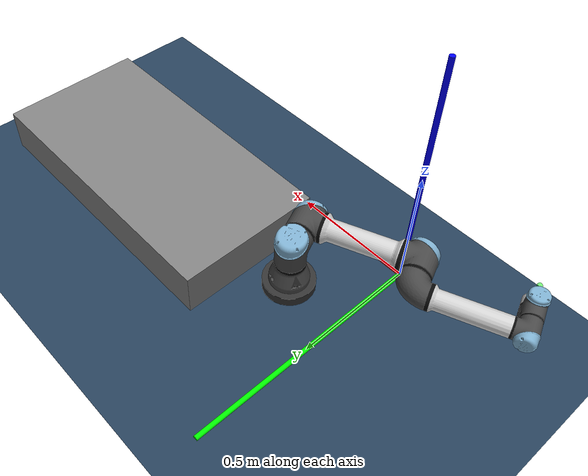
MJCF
<mujoco model="demo scene">

	<compiler angle="radian" autolimits="true"/>

	<option timestep="0.001" integrator="implicitfast" gravity="0 0 -9.82" solver="PGS"/>

	<!-- gravity="0 0 -9.82" -->

	<include file="../assets/universal_robots_ur5e/ur5e.xml" />
	<include file="../assets/universal_robots_ur5e/mounting_plate.xml" />
	<include file="../assets/universal_robots_ur5e/f3_table.xml" />
	<include file="../assets/foldable_block_3/f_block_3.xml" />

	<statistic center="0.3 0 0.3" extent="0.8" meansize="0.08" />

	<visual>
		<headlight diffuse="0.6 0.6 0.6" ambient="0.1 0.1 0.1" specular="0 0 0" />
		<rgba haze="0.15 0.25 0.35 1" />
		<global azimuth="120" elevation="-20" />
	</visual>

	<asset>
		<texture type="skybox" builtin="gradient" rgb1="0.3 0.5 0.7" rgb2="0 0 0" width="512"
			height="3072" />
		<texture type="2d" name="groundplane" builtin="checker" mark="edge" rgb1="0.2 0.3 0.4"
			rgb2="0.1 0.2 0.3" markrgb="0.8 0.8 0.8" width="300" height="300" />
		<material name="groundplane" texture="groundplane" texuniform="true" texrepeat="5 5"
			reflectance="0.2" />
	</asset>

	<worldbody>

		<light pos="0 0 1.5" dir="0 0 -1" directional="true" />
		<geom name="floor" size="0 0 0.05" type="plane" material="groundplane" />
		<geom name="x-aixs" group="2" type="cylinder" contype="0" conaffinity="0"
			fromto="0 0 0 1 0 0" size="0.01" rgba="1 0 0 1" />
		<geom name="y-aixs" group="2" type="cylinder" contype="0" conaffinity="0"
			fromto="0 0 0 0 1 0" size="0.01" rgba="0 1 0 1" />
		<geom name="z-aixs" group="2" type="cylinder" contype="0" conaffinity="0"
			fromto="0 0 0 0 0 1" size="0.01" rgba="0 0 1 1" />

		<body name="mocap" mocap="true" pos="0.22331901 0.37537452 0.08791326">
			<geom name="mocap" type="sphere" size="0.001" />
		</body>

	</worldbody>

	<contact>
		<exclude body1="flange" body2="f3_block_1" />
		<exclude body1="wrist_3_link" body2="f3_block_1" />
		<exclude body1="wrist_2_link" body2="f3_block_1" />
		<exclude body1="ur5e_base" body2="ur_mounting_plate"/>
	</contact>

	<equality>
		<weld name="attach" body1="flange" body2="f3_block_1" active="true" relpose = "0 0 0 0 0 0 0" />

	</equality>

	<!-- Actuated boxes -->
  <actuator>      <!--        ctrl input clamp........................        -->
  </actuator>

</mujoco>

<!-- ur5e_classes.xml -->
<mujocoinclude>
	<default class="ur5e">
		<material specular="0.5" shininess="0.25" />
		<joint axis="0 1 0" range="-6.28319 6.28319" armature="0.1" />
		<general gaintype="fixed" biastype="affine" ctrlrange="-6.2831 6.2831" gainprm="2000"
			biasprm="0 -2000 -400" forcerange="-150 150" />
		<default class="size3">
			<default class="size3_limited">
				<joint range="-3.1415 3.1415" />
				<general ctrlrange="-3.1415 3.1415" />
			</default>
		</default>
		<default class="size1">
			<general gainprm="500" biasprm="0 -500 -100" forcerange="-28 28" />
		</default>
		<default class="visual">
			<geom type="mesh" contype="0" conaffinity="0" group="2" />
		</default>
		<default class="collision">
			<geom type="capsule"  contype="0" conaffinity="0" group="4" />
			<default class="eef_collision">
				<geom type="cylinder" />
			</default>
		</default>
		<site size="0.001" rgba="0.5 0.5 0.5 0.3" group="4" />
	</default>
</mujocoinclude>

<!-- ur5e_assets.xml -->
<mujocoinclude>
	<material name="black" rgba="0.033 0.033 0.033 1" />
	<material name="jointgray" rgba="0.278 0.278 0.278 1" />
	<material name="linkgray" rgba="0.82 0.82 0.82 1" />
	<material name="urblue" rgba="0.49 0.678 0.8 1" />

	<mesh file="../assets/universal_robots_ur5e/assets/base_0.obj" />
	<mesh file="../assets/universal_robots_ur5e/assets/base_1.obj" />
	<mesh file="../assets/universal_robots_ur5e/assets/shoulder_0.obj" />
	<mesh file="../assets/universal_robots_ur5e/assets/shoulder_1.obj" />
	<mesh file="../assets/universal_robots_ur5e/assets/shoulder_2.obj" />
	<mesh file="../assets/universal_robots_ur5e/assets/upperarm_0.obj" />
	<mesh file="../assets/universal_robots_ur5e/assets/upperarm_1.obj" />
	<mesh file="../assets/universal_robots_ur5e/assets/upperarm_2.obj" />
	<mesh file="../assets/universal_robots_ur5e/assets/upperarm_3.obj" />
	<mesh file="../assets/universal_robots_ur5e/assets/forearm_0.obj" />
	<mesh file="../assets/universal_robots_ur5e/assets/forearm_1.obj" />
	<mesh file="../assets/universal_robots_ur5e/assets/forearm_2.obj" />
	<mesh file="../assets/universal_robots_ur5e/assets/forearm_3.obj" />
	<mesh file="../assets/universal_robots_ur5e/assets/wrist1_0.obj" />
	<mesh file="../assets/universal_robots_ur5e/assets/wrist1_1.obj" />
	<mesh file="../assets/universal_robots_ur5e/assets/wrist1_2.obj" />
	<mesh file="../assets/universal_robots_ur5e/assets/wrist2_0.obj" />
	<mesh file="../assets/universal_robots_ur5e/assets/wrist2_1.obj" />
	<mesh file="../assets/universal_robots_ur5e/assets/wrist2_2.obj" />
	<mesh file="../assets/universal_robots_ur5e/assets/wrist3.obj" />
</mujocoinclude>

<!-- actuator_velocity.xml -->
<mujocoinclude>
	<velocity class="size3" name="ur5e_shoulder_pan"  joint="shoulder_pan"/>
    <velocity class="size3" name="ur5e_shoulder_lift" joint="shoulder_lift"/>
    <velocity class="size3_limited" name="ur5e_elbow"         joint="elbow"/>
    <velocity class="size1" name="ur5e_wrist_1"       joint="wrist_1"/>
    <velocity class="size1" name="ur5e_wrist_2"       joint="wrist_2"/>
    <velocity class="size1" name="ur5e_wrist_3"       joint="wrist_3"/>
</mujocoinclude>

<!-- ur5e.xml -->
<mujoco model="ur5e">

  <default>
    <include file="../assets/universal_robots_ur5e/ur5e_classes.xml" />
  </default>

  <asset>
    <include file="../assets/universal_robots_ur5e/ur5e_assets.xml" />
  </asset>

  <worldbody>
    <body name="ur5e_base" childclass="ur5e" pos="0.22331901 0.37537452 0.08791326" quat="-0.19858483999999996 -0.00311175 0.0012299899999999998 0.98007799">

      <inertial mass="4" pos="0 0 0" diaginertia="0.00443333156 0.00443333156 0.0072"/>
      <geom mesh="base_0" material="black" class="visual"/>
      <geom mesh="base_1" material="jointgray" class="visual" />
      <body name="shoulder_link" pos="0 0 0.163">
        <inertial mass="3.7" pos="0 0 0" diaginertia="0.0102675 0.0102675 0.00666"/>
        <joint name="shoulder_pan" axis="0 0 1"  damping="0.0"/>
        <geom mesh="shoulder_0" material="urblue" class="visual"/>
        <geom mesh="shoulder_1" material="black" class="visual"/>
        <geom mesh="shoulder_2" material="jointgray" class="visual"/>
        <geom class="collision" size="0.06 0.06" pos="0 0 -0.04"/>
        <body name="upper_arm_link" pos="0 0.138 0" quat="1 0 1 0">
          <inertial mass="8.393" pos="0 0 0.2125" diaginertia="0.133886 0.133886 0.0151074"/>
          <joint name="shoulder_lift" damping="0.0"/>
          <geom mesh="upperarm_0" material="linkgray" class="visual"/>
          <geom mesh="upperarm_1" material="black" class="visual"/>
          <geom mesh="upperarm_2" material="jointgray" class="visual"/>
          <geom mesh="upperarm_3" material="urblue" class="visual"/>
          <geom class="collision" pos="0 -0.04 0" quat="1 1 0 0" size="0.06 0.06"/>
          <geom class="collision" size="0.05 0.2" pos="0 0 0.2"/>
          <body name="forearm_link" pos="0 -0.131 0.425">
            <inertial mass="2.275" pos="0 0 0.196" diaginertia="0.0311796 0.0311796 0.004095"/>
            <joint name="elbow" class="size3_limited" damping="0.0"/>
            <geom mesh="forearm_0" material="urblue" class="visual"/>
            <geom mesh="forearm_1" material="linkgray" class="visual"/>
            <geom mesh="forearm_2" material="black" class="visual"/>
            <geom mesh="forearm_3" material="jointgray" class="visual"/>
            <geom class="collision" pos="0 0.08 0" quat="1 1 0 0" size="0.055 0.06"/>
            <geom class="collision" size="0.038 0.19" pos="0 0 0.2"/>
            <body name="wrist_1_link" pos="0 0 0.392" quat="1 0 1 0">
              <inertial mass="1.219" pos="0 0.127 0" diaginertia="0.0025599 0.0025599 0.0021942"/>
              <joint name="wrist_1" damping="0.0"/>
              <geom mesh="wrist1_0" material="black" class="visual"/>
              <geom mesh="wrist1_1" material="urblue" class="visual"/>
              <geom mesh="wrist1_2" material="jointgray" class="visual"/>
              <geom class="collision" pos="0 0.05 0" quat="1 1 0 0" size="0.04 0.07"/>
              <body name="wrist_2_link" pos="0 0.127 0">
                <inertial mass="1.219" pos="0 0 0.1" diaginertia="0.0025599 0.0025599 0.0021942"/>
                <joint name="wrist_2" axis="0 0 1" damping="0.0"/>
                <geom mesh="wrist2_0" material="black" class="visual"/>
                <geom mesh="wrist2_1" material="urblue" class="visual"/>
                <geom mesh="wrist2_2" material="jointgray" class="visual"/>
                <geom name="1" class="collision" size="0.04 0.06" pos="0 0 0.04"/>
                <geom name="2" class="collision" pos="0 0.02 0.1" quat="1 1 0 0" size="0.04 0.04"/>
                <body name="wrist_3_link" pos="0 0 0.1">
                  <inertial mass="0.1879" pos="0 0.0771683 0" quat="1 0 0 1"
                    diaginertia="0.000132134 9.90863e-05 9.90863e-05"/>
                  <joint name="wrist_3" damping="0.0"/>
                  <geom name="wrist3" material="linkgray" mesh="wrist3" class="visual" />
                  <geom name="eef_collision" class="eef_collision" pos="0 0.08 0" quat="1 1 0 0"
                    size="0.04 0.02" />

                  <!-- Flange position for flick 1 body task -->
                  <body name="flange" pos="0.00 0.10 -0.075" quat="0         0.7071         0.7071    0">

                  <!-- Flange position for flick 2 body task -->

                  <!-- Flange position for flick 3 task -->

                  <!-- for the cloth task (c1) -->

                    <site name="tcp" pos="0 0 0" size="0.01" rgba="0 1 0 0.5" group="2" />
                  </body>

                </body>
              </body>
            </body>
          </body>
        </body>
      </body>
    </body>
  </worldbody>

  <actuator>
    <!-- actuators for position control -->

    <!-- actuators for velocity control -->
    <include file="../assets/universal_robots_ur5e/actuator_velocity.xml"/>

    <!-- actuators for torque control -->

  </actuator>

  <sensor>
    <force  name="force"  site="tcp" />
    <torque name="torque" site="tcp" />
  </sensor>

</mujoco>

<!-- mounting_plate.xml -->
<mujocoinclude>
	<worldbody>
		<body name="ur_mounting_plate" pos="0.22331901 0.37537452 0.06895663">
			<geom name="ur_mounting_plate" type="cylinder" size="0.1 0.01895663"  rgba="0.2 0.2 0.2 1" mass="10"/>
		</body>
	</worldbody>
</mujocoinclude>

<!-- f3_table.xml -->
<mujocoinclude>

	<worldbody>
		<body name="flexcell_top">
			<geom name="flexcell_top" type="box" size="0.6 0.3 0.150" pos="1.0 0.4 0.025" margin="0.001"
				solref="0.0001 1" solimp="0.9 0.95 0.001 0.5 4" />
		</body>

	</worldbody>
</mujocoinclude>

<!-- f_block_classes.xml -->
<mujocoinclude>
    <default class="f3_block_visual">
    <geom group="2" type="mesh" contype="0" conaffinity="0" friction="0.2 0.005 0.0001"/>
    </default>
    <default class="f3_block_collision">
    <geom group="3" type="mesh" contype="1" conaffinity="1" friction="0.2 0.005 0.0001"/>
    </default>
</mujocoinclude>

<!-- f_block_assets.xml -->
<mujocoinclude>
    <!-- block 1 assets -->
    <mesh file="../assets/foldable_block_3/assets/f3_block_link/f3_block_link.obj"/>
    <mesh file="../assets/foldable_block_3/assets/f3_block_link/f3_block_link_collision_0.obj"/>
    <mesh file="../assets/foldable_block_3/assets/f3_block_link/f3_block_link_collision_1.obj"/>
    <mesh file="../assets/foldable_block_3/assets/f3_block_link/f3_block_link_collision_2.obj"/>
    <mesh file="../assets/foldable_block_3/assets/f3_block_link/f3_block_link_collision_3.obj"/>
    <mesh file="../assets/foldable_block_3/assets/f3_block_link/f3_block_link_collision_4.obj"/>
    <mesh file="../assets/foldable_block_3/assets/f3_block_link/f3_block_link_collision_5.obj"/>
    <mesh file="../assets/foldable_block_3/assets/f3_block_link/f3_block_link_collision_6.obj"/>
    <mesh file="../assets/foldable_block_3/assets/f3_block_link/f3_block_link_collision_7.obj"/>
    <mesh file="../assets/foldable_block_3/assets/f3_block_link/f3_block_link_collision_8.obj"/>
    <mesh file="../assets/foldable_block_3/assets/f3_block_link/f3_block_link_collision_9.obj"/>

    <!-- block 2 assets -->
    <mesh file="../assets/foldable_block_3/assets/f3_block_plate/f3_block_plate.obj"/>
    <mesh file="../assets/foldable_block_3/assets/f3_block_plate/f3_block_plate_collision_0.obj"/>
    <mesh file="../assets/foldable_block_3/assets/f3_block_plate/f3_block_plate_collision_1.obj"/>
    <mesh file="../assets/foldable_block_3/assets/f3_block_plate/f3_block_plate_collision_2.obj"/>
    <mesh file="../assets/foldable_block_3/assets/f3_block_plate/f3_block_plate_collision_3.obj"/>
    <mesh file="../assets/foldable_block_3/assets/f3_block_plate/f3_block_plate_collision_4.obj"/>
    <mesh file="../assets/foldable_block_3/assets/f3_block_plate/f3_block_plate_collision_5.obj"/>

</mujocoinclude>

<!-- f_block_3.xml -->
<mujoco model="f_block">

  <default>
    <include file="../assets/foldable_block_3/f_block_classes.xml" />
  </default>

  <asset>
    <include file="../assets/foldable_block_3/f_block_assets.xml" />
  </asset>

  <worldbody>

    <!-- 3 body structure -->

    <body name="f3_block_1" pos="0.9 0.37 0.05" quat=" 1    0         0         0 ">
        <joint name="f3_block_free_joint" type="free"/>
        <inertial mass="0.5" pos="0.075 0.01 -0.075" diaginertia="0.0102675 0.0102675 0.00666"/>

        <geom mesh="f3_block_plate" rgba="0.9278748131857267 0.9750400105728048 0.011301633201228567 1"  class="f3_block_visual"/>
        <geom mesh="f3_block_plate_collision_0" rgba="0.18076945838831482 0.19889101927907116 0.8724239034434478 1" class="f3_block_collision" />
        <geom mesh="f3_block_plate_collision_1" rgba="0.8349444943689354 0.6761946945189133 0.33010370045568516 1" class="f3_block_collision"/>
        <geom mesh="f3_block_plate_collision_2" rgba="0.8938555477495602 0.370864054702849 0.04724099909715218 1" class="f3_block_collision"/>
        <geom mesh="f3_block_plate_collision_3" rgba="0.3162295518708149 0.43406955044978357 0.9791849935326291 1" class="f3_block_collision"/>
        <geom mesh="f3_block_plate_collision_4" rgba="0.99271047162903 0.9285073596818263 0.12479439747228471 1" class="f3_block_collision"/>
        <geom mesh="f3_block_plate_collision_5" rgba="0.05935130030960267 0.7529771890764725 0.22837089692494694 1" class="f3_block_collision"/>

      <body name="f3_block_2" pos="0.150 0.0 -0.0" quat="1 0 0 0">
          <inertial mass="0.05" pos="0.020 0.010 -0.075" diaginertia="0.0102675 0.0102675 0.00666"/>
          <joint name="f3_block_1_joint" pos="0.01 0.01 0.0" axis="0 0 1"  damping="0.1" range="-3.14 4.7115"/>

          <geom mesh="f3_block_link" rgba="0.105 0.091 0.188 1"  class="f3_block_visual"/>
          <geom mesh="f3_block_link_collision_0" rgba="0.2992562329040618 0.4252512394630181 0.831912094117138 1" class="f3_block_collision"/>
          <geom mesh="f3_block_link_collision_1" rgba="0.1595922727019311 0.9696162877792459 0.7224056856424816 1" class="f3_block_collision"/>
          <geom mesh="f3_block_link_collision_2" rgba="0.5697960670610052 0.058134170473644775 0.022095857956316856 1" class="f3_block_collision"/>
          <geom mesh="f3_block_link_collision_3" rgba="0.4917060296470629 0.3552274733575328 0.8838357735143907 1" class="f3_block_collision"/>
          <geom mesh="f3_block_link_collision_4" rgba="0.818091198063223 0.9977975896167404 0.9309074839164203 1" class="f3_block_collision"/>
          <geom mesh="f3_block_link_collision_5" rgba="0.2045959024773919 0.8322210462263822 0.8901627770026551 1" class="f3_block_collision"/>
          <geom mesh="f3_block_link_collision_6" rgba="0.009942686740152862 0.9703182884271851 0.5732672283776591 1" class="f3_block_collision"/>
          <geom mesh="f3_block_link_collision_7" rgba="0.7804299043810422 0.31807659347790285 0.5917882320637473 1" class="f3_block_collision"/>
          <geom mesh="f3_block_link_collision_8" rgba="0.9671768451814209 0.19808913405221396 0.23480364706907042 1" class="f3_block_collision"/>
          <geom mesh="f3_block_link_collision_9" rgba="0.15242985507146656 0.36353944985387865 0.73685715043536 1" class="f3_block_collision"/>

        <body name="f3_block_3" pos="0.045 0.0 0.00" quat=" 1    0         0         0 ">
            <joint name="f3_block_2_joint" pos="-0.01 0.01 0.0" axis="0 0 1"  damping="0.1" range="-3.14 4.7115"/>
            <inertial mass="0.5" pos="0.075 0.01 -0.075" diaginertia="0.0102675 0.0102675 0.00666"/>

            <geom mesh="f3_block_plate" rgba="0.9278748131857267 0.9750400105728048 0.011301633201228567 1"  class="f3_block_visual"/>
            <geom mesh="f3_block_plate_collision_0" rgba="0.18076945838831482 0.19889101927907116 0.8724239034434478 1" class="f3_block_collision" />
            <geom mesh="f3_block_plate_collision_1" rgba="0.8349444943689354 0.6761946945189133 0.33010370045568516 1" class="f3_block_collision"/>
            <geom mesh="f3_block_plate_collision_2" rgba="0.8938555477495602 0.370864054702849 0.04724099909715218 1" class="f3_block_collision"/>
            <geom mesh="f3_block_plate_collision_3" rgba="0.3162295518708149 0.43406955044978357 0.9791849935326291 1" class="f3_block_collision"/>
            <geom mesh="f3_block_plate_collision_4" rgba="0.99271047162903 0.9285073596818263 0.12479439747228471 1" class="f3_block_collision"/>
            <geom mesh="f3_block_plate_collision_5" rgba="0.05935130030960267 0.7529771890764725 0.22837089692494694 1" class="f3_block_collision"/>

          <body name="f3_block_4" pos="0.150 0.0 0.0" quat="1 0 0 0">
              <inertial mass="0.05" pos="0.020 0.010 -0.075" diaginertia="0.0102675 0.0102675 0.00666"/>
              <joint name="f3_block_3_joint" pos="0.01 0.01 0.0" axis="0 0 1"  damping="0.1" range="-3.14 4.7115"/>

              <geom mesh="f3_block_link" rgba="0.105 0.091 0.188 1"  class="f3_block_visual"/>
              <geom mesh="f3_block_link_collision_0" rgba="0.2992562329040618 0.4252512394630181 0.831912094117138 1" class="f3_block_collision"/>
              <geom mesh="f3_block_link_collision_1" rgba="0.1595922727019311 0.9696162877792459 0.7224056856424816 1" class="f3_block_collision"/>
              <geom mesh="f3_block_link_collision_2" rgba="0.5697960670610052 0.058134170473644775 0.022095857956316856 1" class="f3_block_collision"/>
              <geom mesh="f3_block_link_collision_3" rgba="0.4917060296470629 0.3552274733575328 0.8838357735143907 1" class="f3_block_collision"/>
              <geom mesh="f3_block_link_collision_4" rgba="0.818091198063223 0.9977975896167404 0.9309074839164203 1" class="f3_block_collision"/>
              <geom mesh="f3_block_link_collision_5" rgba="0.2045959024773919 0.8322210462263822 0.8901627770026551 1" class="f3_block_collision"/>
              <geom mesh="f3_block_link_collision_6" rgba="0.009942686740152862 0.9703182884271851 0.5732672283776591 1" class="f3_block_collision"/>
              <geom mesh="f3_block_link_collision_7" rgba="0.7804299043810422 0.31807659347790285 0.5917882320637473 1" class="f3_block_collision"/>
              <geom mesh="f3_block_link_collision_8" rgba="0.9671768451814209 0.19808913405221396 0.23480364706907042 1" class="f3_block_collision"/>
              <geom mesh="f3_block_link_collision_9" rgba="0.15242985507146656 0.36353944985387865 0.73685715043536 1" class="f3_block_collision"/>

              <body name="f3_block_5" pos="0.045 0.0 0.0" quat="1 0 0 0">
                  <joint name="f3_block_4_joint" pos="-0.01 0.01 0.0" axis="0 0 1"  damping="0.1" range="-3.14 4.7115"/>
                  <inertial mass="0.5" pos="0.075 0.01 -0.075" diaginertia="0.0102675 0.0102675 0.00666"/>

                  <geom mesh="f3_block_plate" rgba="0.9278748131857267 0.9750400105728048 0.011301633201228567 1"  class="f3_block_visual"/>
                  <geom mesh="f3_block_plate_collision_0" rgba="0.18076945838831482 0.19889101927907116 0.8724239034434478 1" class="f3_block_collision" />
                  <geom mesh="f3_block_plate_collision_1" rgba="0.8349444943689354 0.6761946945189133 0.33010370045568516 1" class="f3_block_collision"/>
                  <geom mesh="f3_block_plate_collision_2" rgba="0.8938555477495602 0.370864054702849 0.04724099909715218 1" class="f3_block_collision"/>
                  <geom mesh="f3_block_plate_collision_3" rgba="0.3162295518708149 0.43406955044978357 0.9791849935326291 1" class="f3_block_collision"/>
                  <geom mesh="f3_block_plate_collision_4" rgba="0.99271047162903 0.9285073596818263 0.12479439747228471 1" class="f3_block_collision"/>
                  <geom mesh="f3_block_plate_collision_5" rgba="0.05935130030960267 0.7529771890764725 0.22837089692494694 1" class="f3_block_collision"/>

            </body>

          </body>

        </body>

      </body>

    </body>

  </worldbody>

  <actuator>
    <!-- actuators for position control -->

    <!-- actuators for velocity control -->

    <!-- actuators for torque control -->

  </actuator>

</mujoco>
